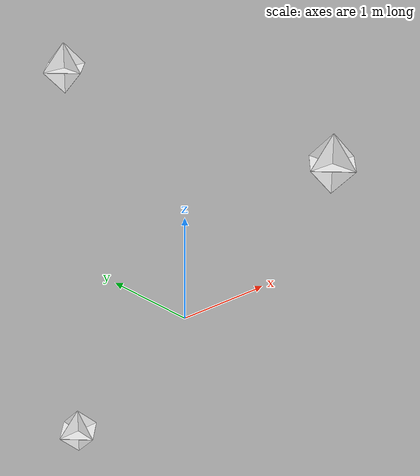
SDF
<sdf version="1.4">
    <model name='reflector'>
        <static>true</static>
        <pose>0 0 0 0 0 0</pose>
	<link name='reflector'>
		<visual name='block1'>
			<pose>0 1.7 -2 0 0 0.785398</pose>
			<geometry>
				<box>
	                                <size>0.35 0.35 0.003</size>
				</box>
			</geometry>
			<material>
				<ambient>1 1 1 1</ambient>
				<diffuse>1 1 1 1</diffuse>
				<specular>1 1 1 1</specular>
			</material>
		</visual>
		<visual name='block2'>
			<pose>0 1.7 -2 1.5708 0.785398 0</pose>
			<geometry>
				<box>
	                                <size>0.35 0.35 0.003</size>
				</box>
			</geometry>
			<material>
				<ambient>1 1 1 1</ambient>
				<diffuse>1 1 1 1</diffuse>
				<specular>1 1 1 1</specular>
			</material>
		</visual>
		<visual name='block3'>
			<pose>0 1.7 -2 1.5708 0.785398 1.5708</pose>
			<geometry>
				<box>
	                                <size>0.35 0.35 0.003</size>
				</box>
			</geometry>
			<material>
				<ambient>1 1 1 1</ambient>
				<diffuse>1 1 1 1</diffuse>
				<specular>1 1 1 1</specular>
			</material>
		</visual>
		<visual name='block4'>
			<pose>0 1.7 2 0 0 0.785398</pose>
			<geometry>
				<box>
	                                <size>0.35 0.35 0.003</size>
				</box>
			</geometry>
			<material>
				<ambient>1 1 1 1</ambient>
				<diffuse>1 1 1 1</diffuse>
				<specular>1 1 1 1</specular>
			</material>
		</visual>
		<visual name='block5'>
			<pose>0 1.7 2 1.5708 0.785398 0</pose>
			<geometry>
				<box>
	                                <size>0.35 0.35 0.003</size>
				</box>
			</geometry>
			<material>
				<ambient>1 1 1 1</ambient>
				<diffuse>1 1 1 1</diffuse>
				<specular>1 1 1 1</specular>
			</material>
		</visual>
		<visual name='block6'>
			<pose>0 1.7 2 1.5708 0.785398 1.5708</pose>
			<geometry>
				<box>
	                                <size>0.35 0.35 0.003</size>
				</box>
			</geometry>
			<material>
				<ambient>1 1 1 1</ambient>
				<diffuse>1 1 1 1</diffuse>
				<specular>1 1 1 1</specular>
			</material>
		</visual>
		<visual name='block7'>
			<pose>0 -1.7 2 0 0 0.785398</pose>
			<geometry>
				<box>
	                                <size>0.35 0.35 0.003</size>
				</box>
			</geometry>
			<material>
				<ambient>1 1 1 1</ambient>
				<diffuse>1 1 1 1</diffuse>
				<specular>1 1 1 1</specular>
			</material>
		</visual>
		<visual name='block8'>
			<pose>0 -1.7 2 1.5708 0.785398 0</pose>
			<geometry>
				<box>
	                                <size>0.35 0.35 0.003</size>
				</box>
			</geometry>
			<material>
				<ambient>1 1 1 1</ambient>
				<diffuse>1 1 1 1</diffuse>
				<specular>1 1 1 1</specular>
			</material>
		</visual>
		<visual name='block9'>
			<pose>0 -1.7 2 1.5708 0.785398 1.5708</pose>
			<geometry>
				<box>
	                                <size>0.35 0.35 0.003</size>
				</box>
			</geometry>
			<material>
				<ambient>1 1 1 1</ambient>
				<diffuse>1 1 1 1</diffuse>
				<specular>1 1 1 1</specular>
			</material>
		</visual>
        </link>
    </model>
</sdf>
